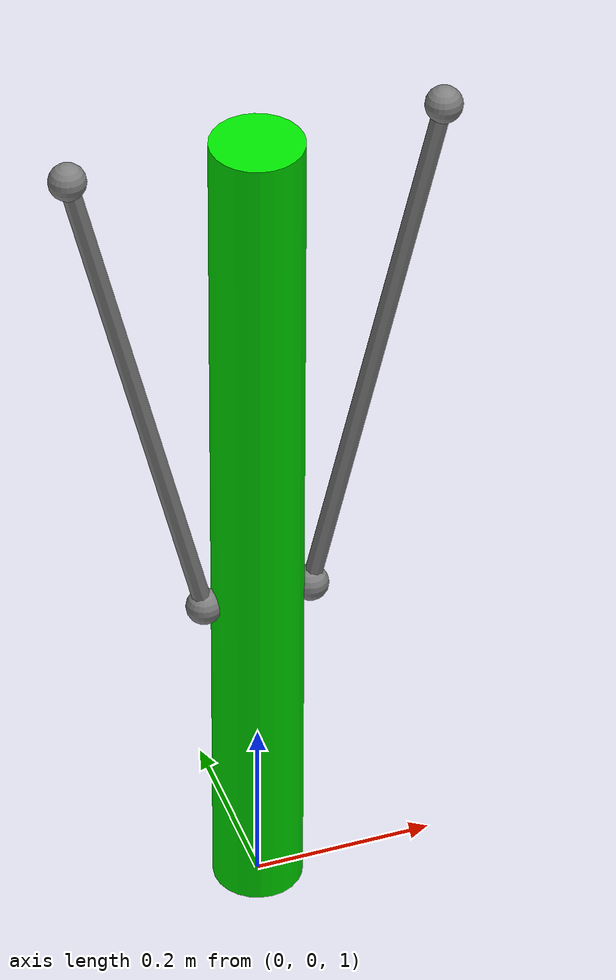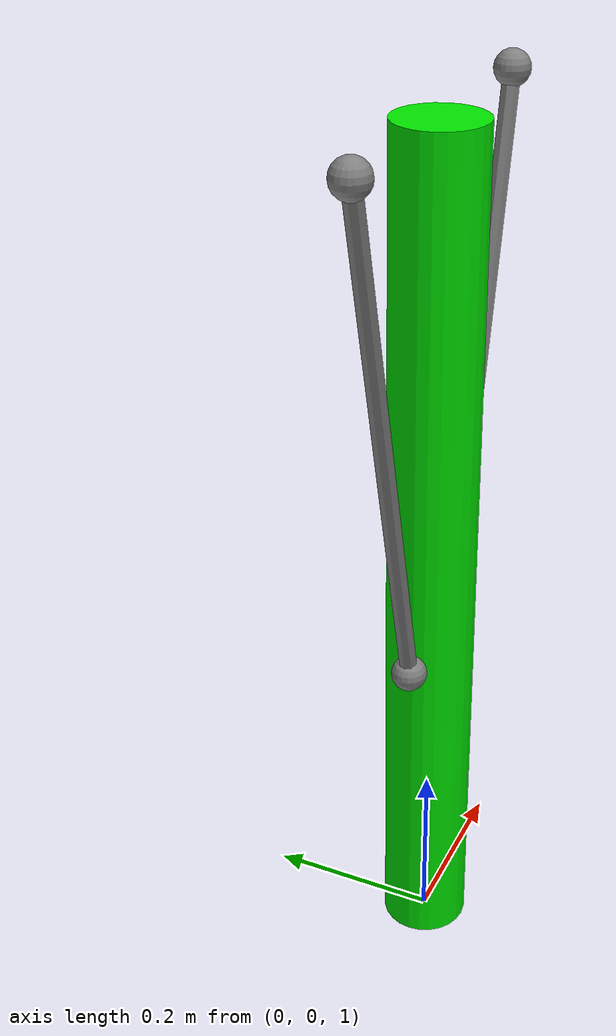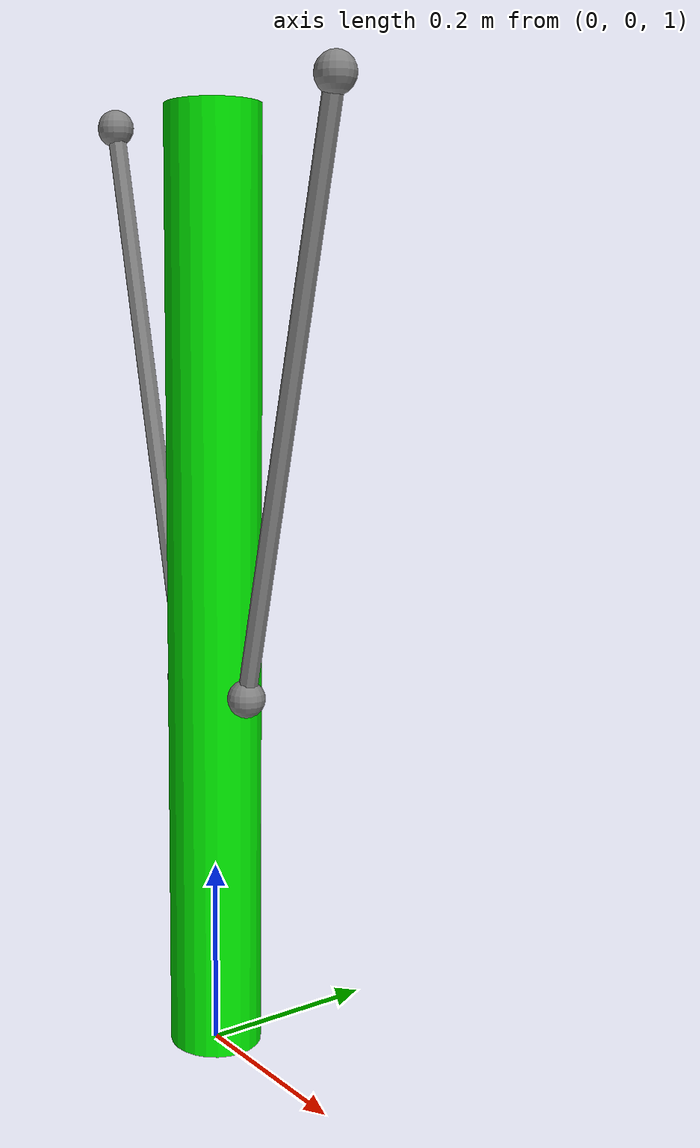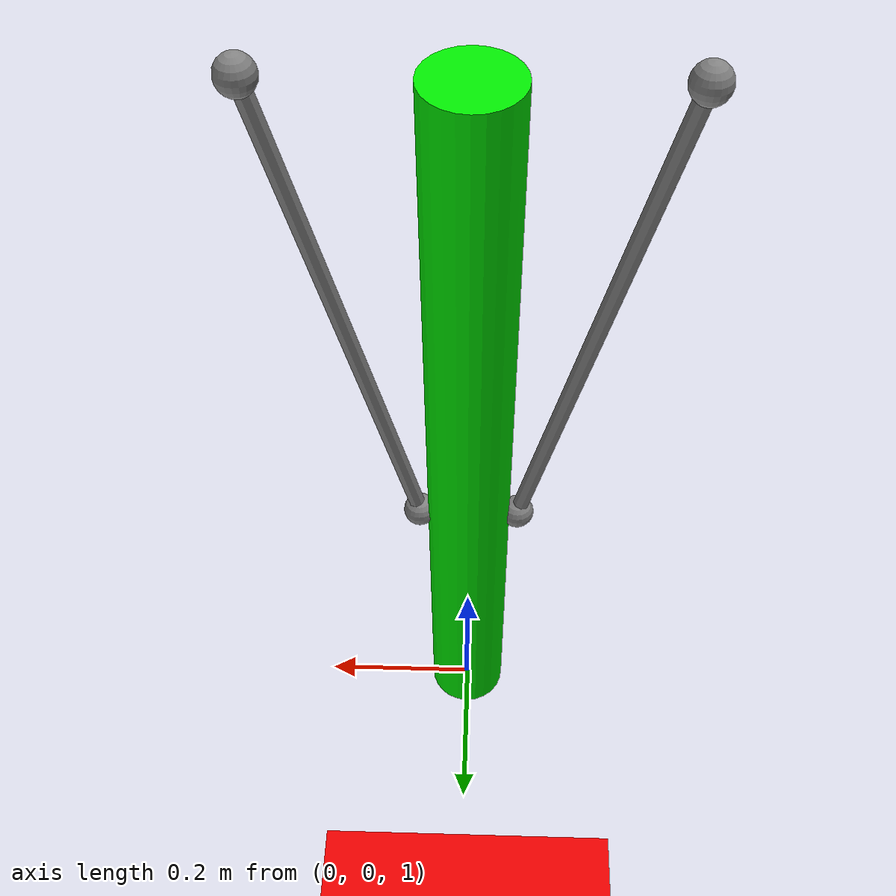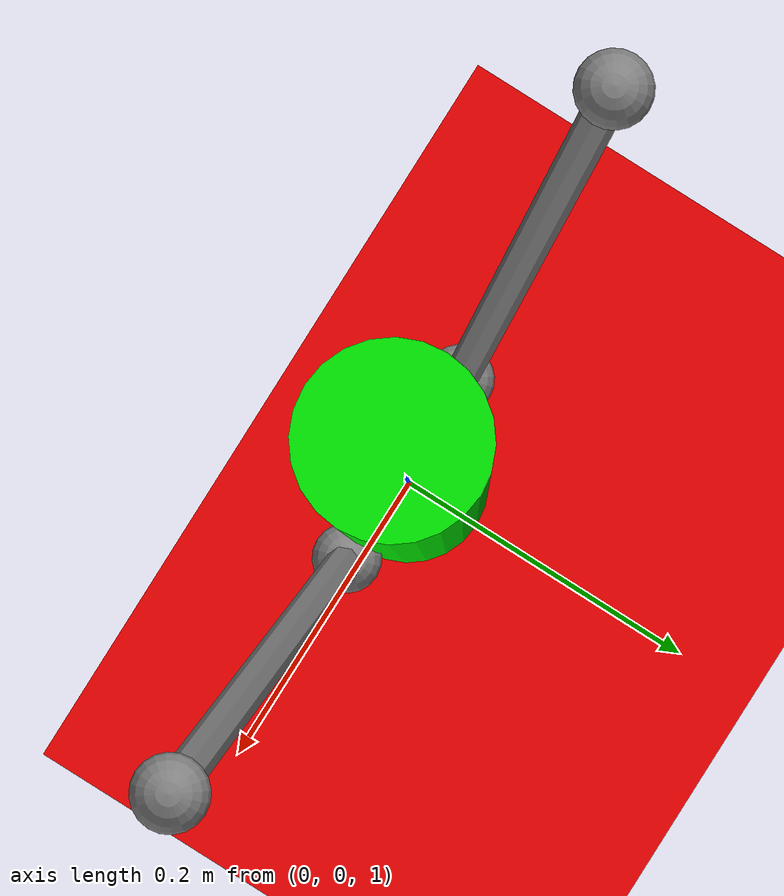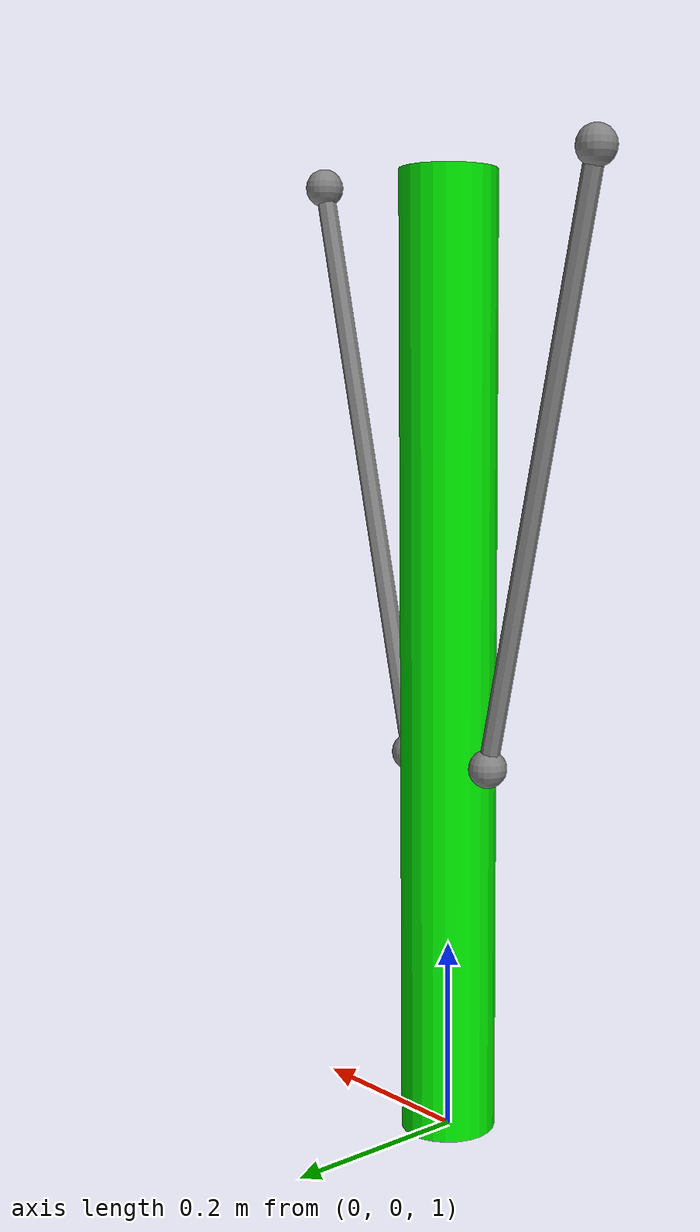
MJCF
<mujoco>
    <option timestep="0.00001">
		<flag gravity="disable"/>
	</option>
    <size nuserdata="3"/>
   <worldbody>
      <light diffuse=".5 .5 .5" pos="0 0 3" dir="0 0 -1"/>
      <geom type="plane" size="1 1 0.1" rgba=".9 0 0 1"/>
      <site name="s0" pos="0.2 0 2" size="0.02"/>
      <site name="s2" pos="-0.2 0 2" size="0.02"/>
      <body pos="0 0 1.5" euler="0 0 0">
         <joint name="joint0" type="hinge" axis="0 -1 0" pos="0 0 0.5" damping="0"/>
         <geom name="pendulum" type="cylinder" size="0.05 .5" rgba="0 .9 0 1" mass="1"/>
         <site name="s1" pos="0.06 0 -0.1" size="0.02"/>
         <site name="s3" pos="-0.06 0 -0.1" size="0.02"/>
      </body>
   </worldbody>
   <tendon>
       <spatial name="r-tendon" width="0.01">
            <site site="s0"/>
            <site site="s1"/>
       </spatial>
   </tendon>
   <tendon>
       <spatial name="l-tendon" width="0.01">
            <site site="s2"/>
            <site site="s3"/>
       </spatial>
   </tendon>
   <actuator>
        <position name="position" joint="joint0" kp="0" ctrlrange="-2 2"/>
        <muscle  name="r-muscle" tendon="r-tendon" range="0.75 1.15" scale="40"/>
        <muscle  name="l-muscle" tendon="l-tendon" range="0.75 1.15" scale="40"/>
   </actuator>
</mujoco>
